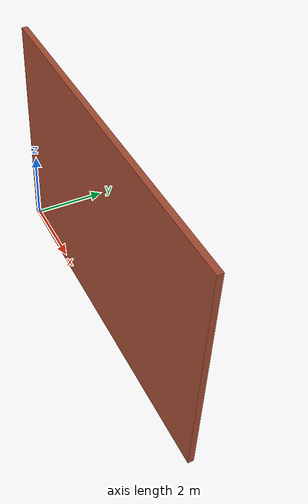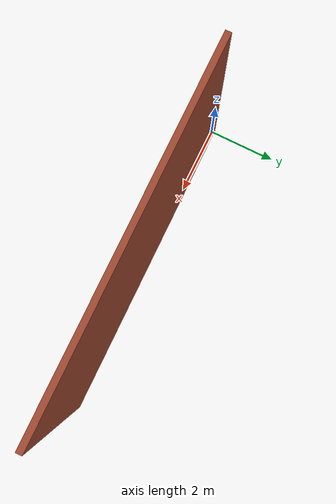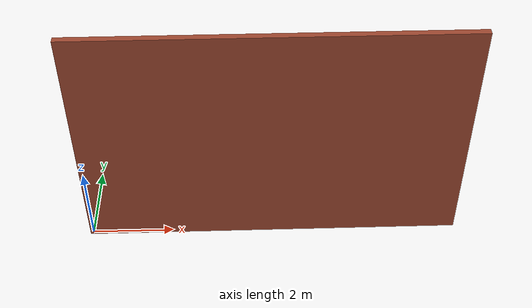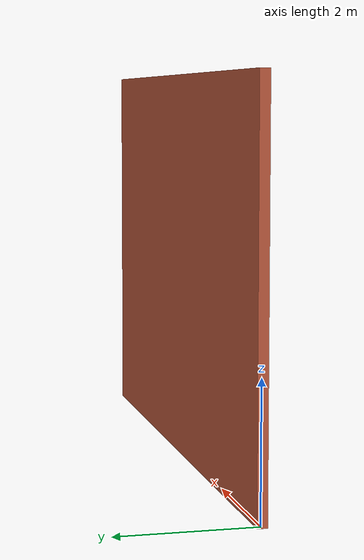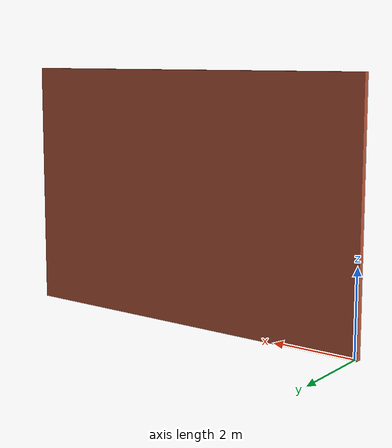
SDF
<?xml version='1.0'?>
<sdf version='1.7'>
  <model name='t_wall_5'>
    <pose>4.5 0 0 0 -0 0</pose>
    <link name='Wall_2'>
      <collision name='Wall_2_Collision'>
        <geometry>
          <box>
            <size>9.15 0.15 6</size>
          </box>
        </geometry>
        <pose>0 0 3 0 -0 0</pose>
      </collision>
      <visual name='Wall_2_Visual'>
        <pose>0 0 3 0 -0 0</pose>
        <geometry>
          <box>
            <size>9.15 0.15 6</size>
          </box>
        </geometry>
        <material>
          <script>
            <uri>model://t_wall_5/scripts</uri>
            <name>Bricks2_5</name>
          </script>
          <ambient>1 1 1 1</ambient>
        </material>
        <meta>
          <layer>0</layer>
        </meta>
      </visual>
      <pose>0 0 0 0 -0 0</pose>
    </link>
    <static>1</static>
  </model>
</sdf>
